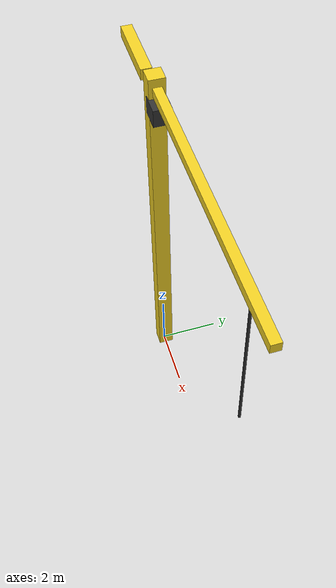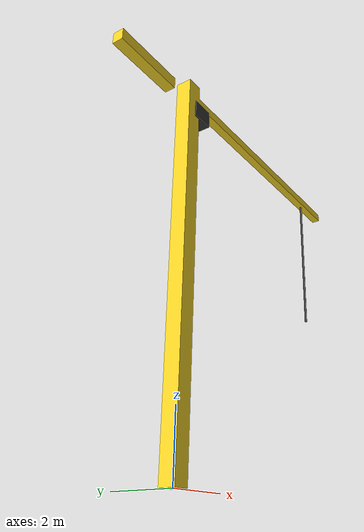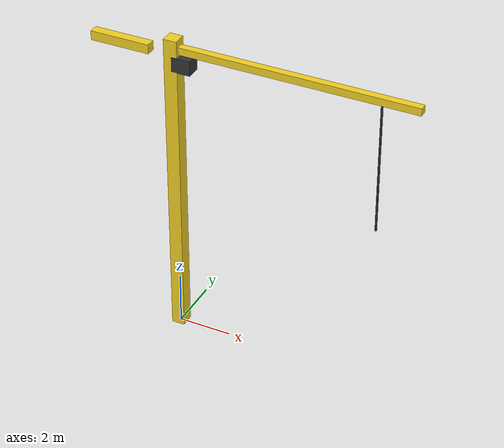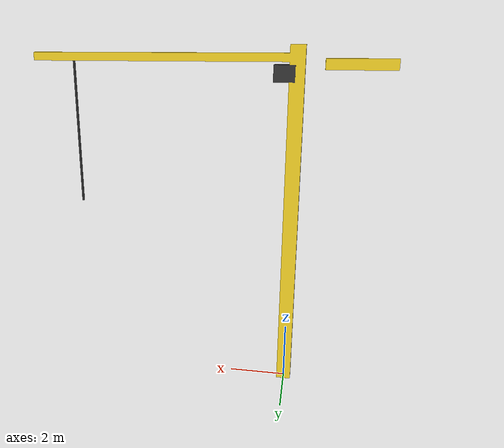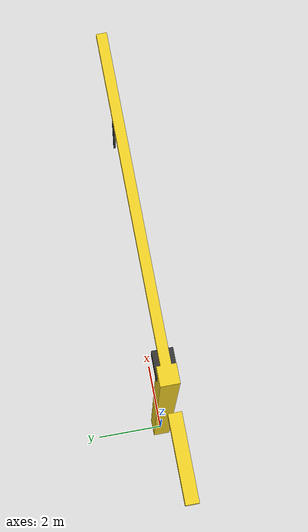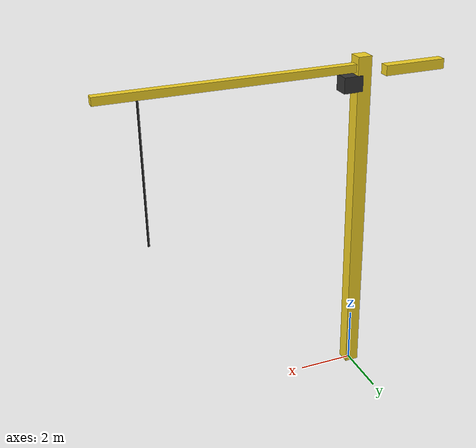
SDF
<?xml version="1.0" ?>
<sdf version="1.6">
  <model name="tower_crane">
    <static>true</static>
    <link name="link">
      <collision name="collision">
        <geometry>
          <mesh>
            <uri>model://tower_crane/meshes/tower_crane.dae</uri>
	    <scale>0.5 0.5 0.5 </scale>
          </mesh>
        </geometry>
      </collision>
      <visual name="visual">
        <geometry>
          <mesh>
            <uri>model://tower_crane/meshes/tower_crane.dae</uri>
	    <scale>0.5 0.5 0.5 </scale>
          </mesh>
        </geometry>
      </visual>
    </link>
  </model>
</sdf>
